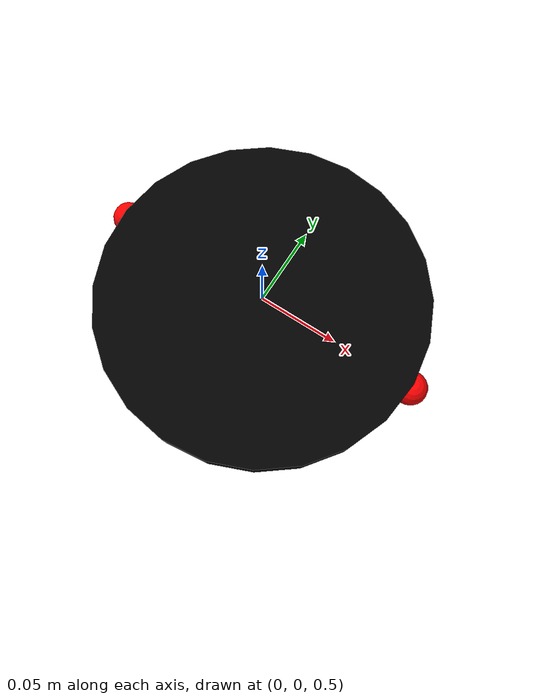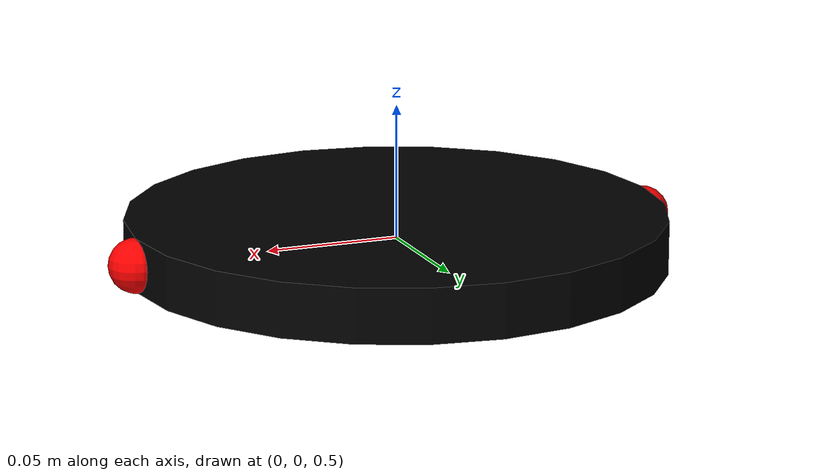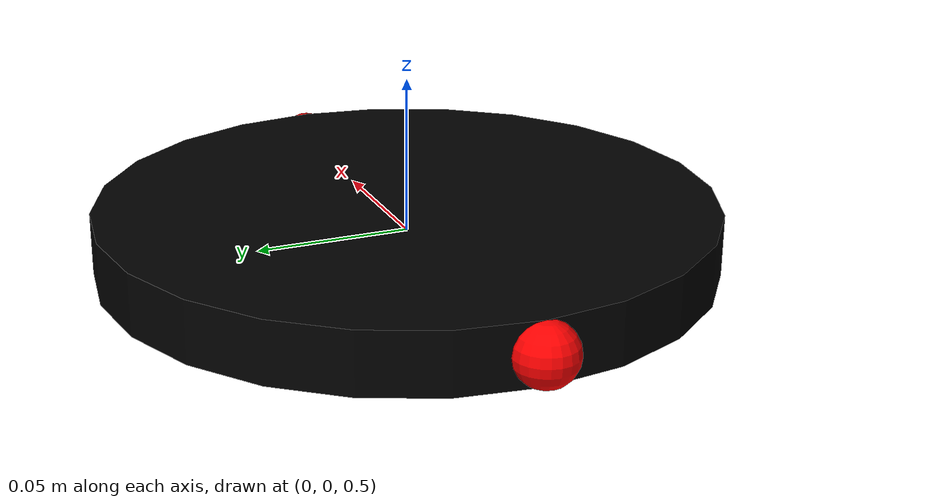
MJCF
<mujoco model="aliengo_description">
    <compiler angle="radian" meshdir="./assets/" autolimits="true"/>
    <option cone="elliptic" impratio="100" />
    <size njmax="500" nconmax="100" />
    <option gravity='0 0 -9.806' timestep='0.002'/>

    <default>
        <geom contype="1" conaffinity="1" friction="0.8 0.02 0.01" rgba="0.5 0.6 0.7 1" margin="0.001" group="0"/>

        <light castshadow="false" diffuse="1 1 1"/>
        <motor ctrlrange="-44.4 44.4" ctrllimited="true"/>
        <camera fovy="60"/>
        <joint damping="3" armature="0.01" frictionloss="0.2" />

    </default>
    <!-- No rename the assests these are the mesh files-->

    <!-- pos is used to set the position-->
    <worldbody>
        <light directional="true" diffuse=".8 .8 .8" pos="0 0 10" dir="0 0 -10"/>
        <body name="mountpoint" pos="0 0 0.5">
        <inertial pos="0.022191 -0.015144 -1.5e-05" quat="-0.0117635 0.707151 0.0135493 0.706835" mass="0.0006" diaginertia="0.00558695 0.00491009 0.00290132" />

            <joint name='weight_joint' type="free" />
            <geom type="cylinder" size="0.1 0.01 0.01" quat="1 0 0 0" rgba="0 0 0 1"/>
            <site name="mount_pooint_1" pos="0.1 0 0" size="0.01" rgba="1 0 0 1"/>
            <site name="mount_pooint_2" pos="-0.1 0 0" size="0.01" rgba="1 0 0 1"/>
        </body>

    </worldbody>

</mujoco>
